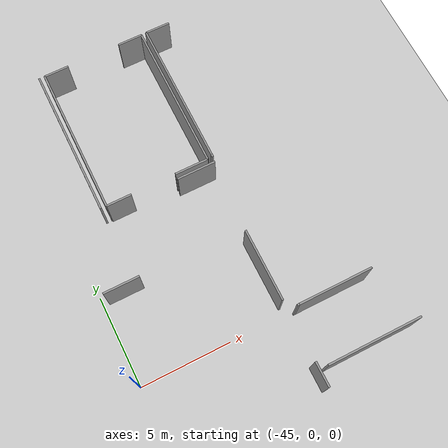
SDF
<sdf version="1.6">
 <world name="default">
  <model name="ground_plane">
   <static>1</static>
   <link name="link">
    <collision name="collision">
     <geometry><plane><normal>0 0 1</normal><size>100 100</size></plane></geometry>
     <surface><friction><ode><mu>100</mu><mu2>50</mu2></ode></friction></surface>
    </collision>
    <visual name="visual">
     <cast_shadows>0</cast_shadows>
     <geometry><plane><normal>0 0 1</normal><size>100 100</size></plane></geometry>
     <material>
      <script><uri>file://media/materials/scripts/gazebo.material</uri><name>Gazebo/Grey</name></script>
     </material>
    </visual>
   </link>
  </model>
  <model name="50041174">
   <static>1</static>
   <link name="Wall_132">
    <collision name="Wall_132_Collision">
     <geometry><box><size>3.93678598629 0.1 2.5</size></box></geometry>
     <pose>1.96839299315 0 1.25 0 0 0</pose>
    </collision>
    <visual name="Wall_132_Visual">
     <pose>1.96839299315 0 1.25 0 0 0</pose>
     <geometry><box><size>3.93678598629 0.1 2.5</size></box></geometry>
     <material>
      <script><uri>file://media/materials/scripts/gazebo.material</uri><name>Gazebo/Grey</name></script>
      <ambient>1 1 1 1</ambient>
     </material>
    </visual>
    <pose>29.4727088093 -12.476770754 0 0 0 -1.57079632679</pose>
   </link>
   <link name="Wall_133">
    <collision name="Wall_133_Collision">
     <geometry><box><size>1.33942625032 0.1 2.5</size></box></geometry>
     <pose>0.669713125159 0 1.25 0 0 0</pose>
    </collision>
    <visual name="Wall_133_Visual">
     <pose>0.669713125159 0 1.25 0 0 0</pose>
     <geometry><box><size>1.33942625032 0.1 2.5</size></box></geometry>
     <material>
      <script><uri>file://media/materials/scripts/gazebo.material</uri><name>Gazebo/Grey</name></script>
      <ambient>1 1 1 1</ambient>
     </material>
    </visual>
    <pose>29.4727088093 -19.6822797664 0 0 0 -1.57079632679</pose>
   </link>
   <link name="Wall_135">
    <collision name="Wall_135_Collision">
     <geometry><box><size>4.04772784971 0.1 2.5</size></box></geometry>
     <pose>2.02386392485 0 1.25 0 0 0</pose>
    </collision>
    <visual name="Wall_135_Visual">
     <pose>2.02386392485 0 1.25 0 0 0</pose>
     <geometry><box><size>4.04772784971 0.1 2.5</size></box></geometry>
     <material>
      <script><uri>file://media/materials/scripts/gazebo.material</uri><name>Gazebo/Grey</name></script>
      <ambient>1 1 1 1</ambient>
     </material>
    </visual>
    <pose>30.0986290937 -16.9455445545 0 0 0 0.0</pose>
   </link>
   <link name="Wall_138">
    <collision name="Wall_138_Collision">
     <geometry><box><size>0.111451413657 0.1 2.5</size></box></geometry>
     <pose>0.0557257068283 0 1.25 0 0 0</pose>
    </collision>
    <visual name="Wall_138_Visual">
     <pose>0.0557257068283 0 1.25 0 0 0</pose>
     <geometry><box><size>0.111451413657 0.1 2.5</size></box></geometry>
     <material>
      <script><uri>file://media/materials/scripts/gazebo.material</uri><name>Gazebo/Grey</name></script>
      <ambient>1 1 1 1</ambient>
     </material>
    </visual>
    <pose>29.9871794872 -16.9461792333 0 0 0 0.00569469926036</pose>
   </link>
   <link name="Wall_139">
    <collision name="Wall_139_Collision">
     <geometry><box><size>5.12680883473 0.1 2.5</size></box></geometry>
     <pose>2.56340441736 0 1.25 0 0 0</pose>
    </collision>
    <visual name="Wall_139_Visual">
     <pose>2.56340441736 0 1.25 0 0 0</pose>
     <geometry><box><size>5.12680883473 0.1 2.5</size></box></geometry>
     <material>
      <script><uri>file://media/materials/scripts/gazebo.material</uri><name>Gazebo/Grey</name></script>
      <ambient>1 1 1 1</ambient>
     </material>
    </visual>
    <pose>29.9206651434 -20.0939324702 0 0 0 0.0</pose>
   </link>
   <link name="Wall_244">
    <collision name="Wall_244_Collision">
     <geometry><box><size>8.20144706778 0.1 2.5</size></box></geometry>
     <pose>4.10072353389 0 1.25 0 0 0</pose>
    </collision>
    <visual name="Wall_244_Visual">
     <pose>4.10072353389 0 1.25 0 0 0</pose>
     <geometry><box><size>8.20144706778 0.1 2.5</size></box></geometry>
     <material>
      <script><uri>file://media/materials/scripts/gazebo.material</uri><name>Gazebo/Grey</name></script>
      <ambient>1 1 1 1</ambient>
     </material>
    </visual>
    <pose>23.4860370652 -0.0 0 0 0 -1.57079632679</pose>
   </link>
   <link name="Wall_247">
    <collision name="Wall_247_Collision">
     <geometry><box><size>8.18964204113 0.1 2.5</size></box></geometry>
     <pose>4.09482102056 0 1.25 0 0 0</pose>
    </collision>
    <visual name="Wall_247_Visual">
     <pose>4.09482102056 0 1.25 0 0 0</pose>
     <geometry><box><size>8.18964204113 0.1 2.5</size></box></geometry>
     <material>
      <script><uri>file://media/materials/scripts/gazebo.material</uri><name>Gazebo/Grey</name></script>
      <ambient>1 1 1 1</ambient>
     </material>
    </visual>
    <pose>23.7920792079 -8.20563594821 0 0 0 1.57079632679</pose>
   </link>
   <link name="Wall_248">
    <collision name="Wall_248_Collision">
     <geometry><box><size>1.35453160701 0.1 2.5</size></box></geometry>
     <pose>0.677265803503 0 1.25 0 0 0</pose>
    </collision>
    <visual name="Wall_248_Visual">
     <pose>0.677265803503 0 1.25 0 0 0</pose>
     <geometry><box><size>1.35453160701 0.1 2.5</size></box></geometry>
     <material>
      <script><uri>file://media/materials/scripts/gazebo.material</uri><name>Gazebo/Grey</name></script>
      <ambient>1 1 1 1</ambient>
     </material>
    </visual>
    <pose>23.7920792079 -0.015993907083 0 0 0 0.0</pose>
   </link>
   <link name="Wall_249">
    <collision name="Wall_249_Collision">
     <geometry><box><size>1.37116019294 0.1 2.5</size></box></geometry>
     <pose>0.685580096471 0 1.25 0 0 0</pose>
    </collision>
    <visual name="Wall_249_Visual">
     <pose>0.685580096471 0 1.25 0 0 0</pose>
     <geometry><box><size>1.37116019294 0.1 2.5</size></box></geometry>
     <material>
      <script><uri>file://media/materials/scripts/gazebo.material</uri><name>Gazebo/Grey</name></script>
      <ambient>1 1 1 1</ambient>
     </material>
    </visual>
    <pose>28.1152576796 -0.015993907083 0 0 0 0.0</pose>
   </link>
   <link name="Wall_250">
    <collision name="Wall_250_Collision">
     <geometry><box><size>8.18723026149 0.1 2.5</size></box></geometry>
     <pose>4.09361513074 0 1.25 0 0 0</pose>
    </collision>
    <visual name="Wall_250_Visual">
     <pose>4.09361513074 0 1.25 0 0 0</pose>
     <geometry><box><size>8.18723026149 0.1 2.5</size></box></geometry>
     <material>
      <script><uri>file://media/materials/scripts/gazebo.material</uri><name>Gazebo/Grey</name></script>
      <ambient>1 1 1 1</ambient>
     </material>
    </visual>
    <pose>29.4864178726 -0.015993907083 0 0 0 -1.57079632679</pose>
   </link>
   <link name="Wall_251">
    <collision name="Wall_251_Collision">
     <geometry><box><size>1.85059659812 0.1 2.5</size></box></geometry>
     <pose>0.925298299061 0 1.25 0 0 0</pose>
    </collision>
    <visual name="Wall_251_Visual">
     <pose>0.925298299061 0 1.25 0 0 0</pose>
     <geometry><box><size>1.85059659812 0.1 2.5</size></box></geometry>
     <material>
      <script><uri>file://media/materials/scripts/gazebo.material</uri><name>Gazebo/Grey</name></script>
      <ambient>1 1 1 1</ambient>
     </material>
    </visual>
    <pose>29.4864178726 -8.20322416857 0 0 0 3.14159265359</pose>
   </link>
   <link name="Wall_252">
    <collision name="Wall_252_Collision">
     <geometry><box><size>1.37852457738 0.1 2.5</size></box></geometry>
     <pose>0.689262288691 0 1.25 0 0 0</pose>
    </collision>
    <visual name="Wall_252_Visual">
     <pose>0.689262288691 0 1.25 0 0 0</pose>
     <geometry><box><size>1.37852457738 0.1 2.5</size></box></geometry>
     <material>
      <script><uri>file://media/materials/scripts/gazebo.material</uri><name>Gazebo/Grey</name></script>
      <ambient>1 1 1 1</ambient>
     </material>
    </visual>
    <pose>25.1706016756 -8.20322416857 0 0 0 -3.13984311578</pose>
   </link>
   <link name="Wall_253">
    <collision name="Wall_253_Collision">
     <geometry><box><size>8.05013962935 0.1 2.5</size></box></geometry>
     <pose>4.02506981467 0 1.25 0 0 0</pose>
    </collision>
    <visual name="Wall_253_Visual">
     <pose>4.02506981467 0 1.25 0 0 0</pose>
     <geometry><box><size>8.05013962935 0.1 2.5</size></box></geometry>
     <material>
      <script><uri>file://media/materials/scripts/gazebo.material</uri><name>Gazebo/Grey</name></script>
      <ambient>1 1 1 1</ambient>
     </material>
    </visual>
    <pose>29.7801472455 -8.05572480325 0 0 0 1.57079632679</pose>
   </link>
   <link name="Wall_254">
    <collision name="Wall_254_Collision">
     <geometry><box><size>1.36684437675 0.1 2.5</size></box></geometry>
     <pose>0.683422188373 0 1.25 0 0 0</pose>
    </collision>
    <visual name="Wall_254_Visual">
     <pose>0.683422188373 0 1.25 0 0 0</pose>
     <geometry><box><size>1.36684437675 0.1 2.5</size></box></geometry>
     <material>
      <script><uri>file://media/materials/scripts/gazebo.material</uri><name>Gazebo/Grey</name></script>
      <ambient>1 1 1 1</ambient>
     </material>
    </visual>
    <pose>29.7801472455 -0.005585173902 0 0 0 0.0</pose>
   </link>
   <link name="Wall_259">
    <collision name="Wall_259_Collision">
     <geometry><box><size>0.144207080289 0.1 2.5</size></box></geometry>
     <pose>0.0721035401443 0 1.25 0 0 0</pose>
    </collision>
    <visual name="Wall_259_Visual">
     <pose>0.0721035401443 0 1.25 0 0 0</pose>
     <geometry><box><size>0.144207080289 0.1 2.5</size></box></geometry>
     <material>
      <script><uri>file://media/materials/scripts/gazebo.material</uri><name>Gazebo/Grey</name></script>
      <ambient>1 1 1 1</ambient>
     </material>
    </visual>
    <pose>29.7816704747 -8.19992383854 0 0 0 1.5813593142</pose>
   </link>
   <link name="Wall_265">
    <collision name="Wall_265_Collision">
     <geometry><box><size>2.1303630363 0.1 2.5</size></box></geometry>
     <pose>1.06518151815 0 1.25 0 0 0</pose>
    </collision>
    <visual name="Wall_265_Visual">
     <pose>1.06518151815 0 1.25 0 0 0</pose>
     <geometry><box><size>2.1303630363 0.1 2.5</size></box></geometry>
     <material>
      <script><uri>file://media/materials/scripts/gazebo.material</uri><name>Gazebo/Grey</name></script>
      <ambient>1 1 1 1</ambient>
     </material>
    </visual>
    <pose>27.6264280274 -8.49454176187 0 0 0 0.0</pose>
   </link>
   <link name="Wall_271">
    <collision name="Wall_271_Collision">
     <geometry><box><size>1.95481192075 0.1 2.5</size></box></geometry>
     <pose>0.977405960376 0 1.25 0 0 0</pose>
    </collision>
    <visual name="Wall_271_Visual">
     <pose>0.977405960376 0 1.25 0 0 0</pose>
     <geometry><box><size>1.95481192075 0.1 2.5</size></box></geometry>
     <material>
      <script><uri>file://media/materials/scripts/gazebo.material</uri><name>Gazebo/Grey</name></script>
      <ambient>1 1 1 1</ambient>
     </material>
    </visual>
    <pose>23.7767199797 -12.2352119827 0 0 0 -3.14055369292</pose>
   </link>
   <pose>-66.5 16.7804645849 0 0 0 0</pose>
  </model>
 </world>
</sdf>
